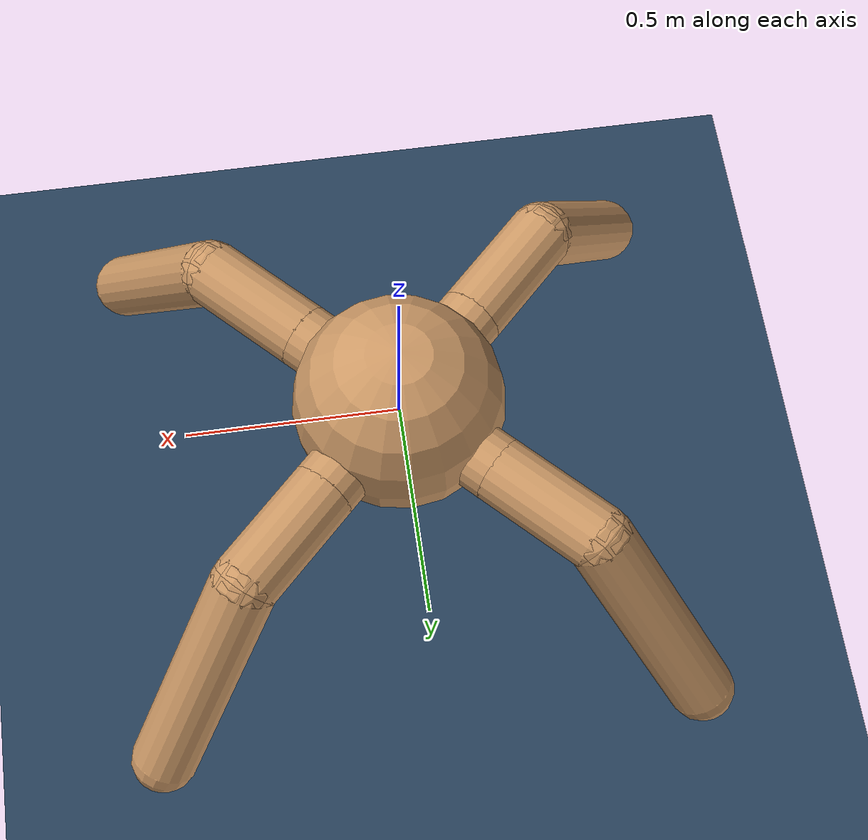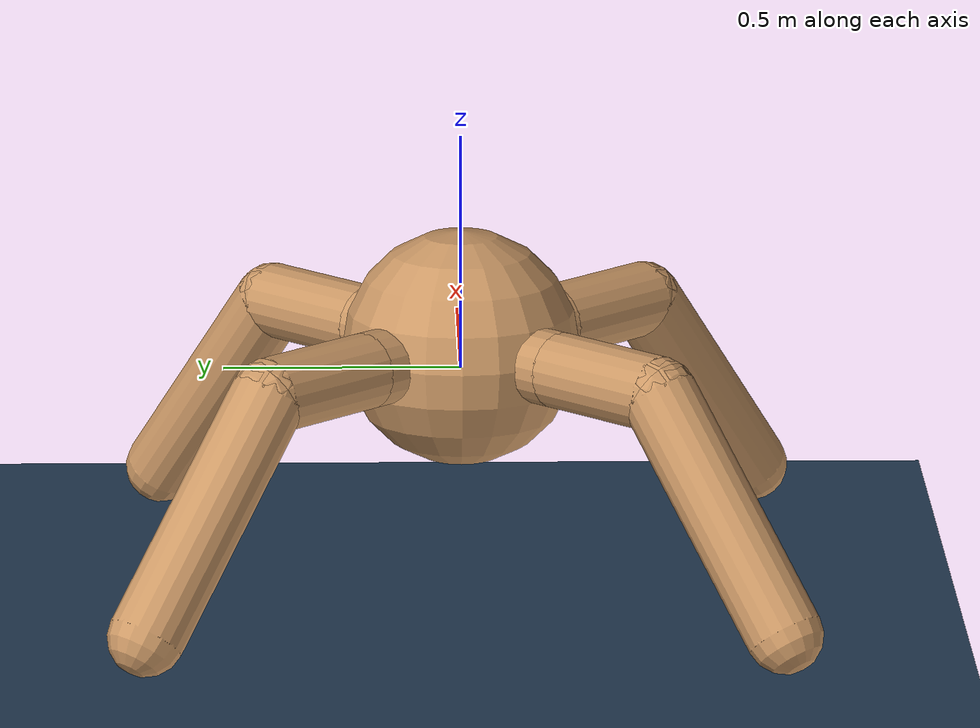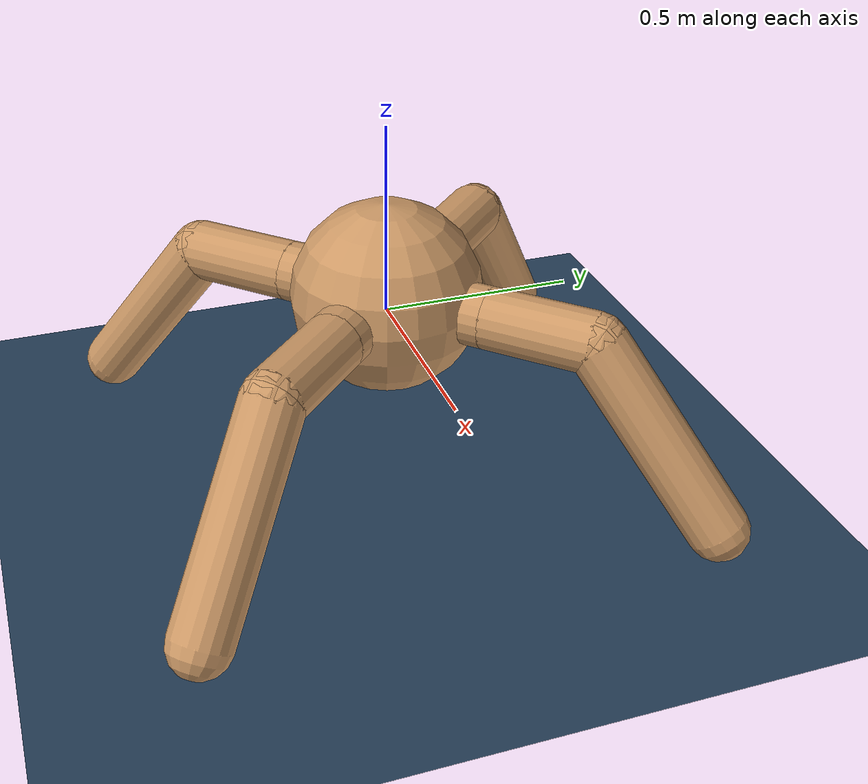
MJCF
<mujoco model="ant">
  <compiler angle="radian"/>
  <option impratio="10" iterations="100" ls_iterations="4" timestep="0.0075" >
      <flag eulerdamp="disable"/>
  </option>
  <!--  reduce contact computation for mjx -->
  <custom>
      <numeric data="15" name="max_contact_points"/>
      <numeric data="15" name="max_geom_pairs"/>
    </custom>

   <visual>
        <quality shadowsize="2048" />
        <headlight ambient="0.4 0.4 0.4" diffuse="0.8 0.8 0.8" specular="0.1 0.1 0.1" />
    </visual>
  <default>
    <motor ctrlrange="-1.0 1.0" ctrllimited="true" gear="5."/>
    <geom friction="1 0.5 0.5" solref=".02 1" solimp="0 .8 .01" material="self" density="50.0"/>
    <joint limited="true" armature="1" damping="1" stiffness="1" solreflimit=".04 1" solimplimit="0 .8 .03"/>
    <default class="rangefinder">
        <site type="capsule" size=".05 .5" rgba="1 0 0 .4" group="4"/>
    </default>
  </default>
  <asset>
    <texture type="2d" name="grid" builtin="checker" mark="edge" rgb1="0.1 0.2 0.3" rgb2="0.2 0.3 0.4" markrgb="0.2 0.3 0.4" width="300" height="300" />
    <material name="grid" texture="grid" texuniform="true" reflectance="0.2" />
    <material name="self" rgba=".8 .6 .4 1"/>
  </asset>
  <worldbody>
    <camera name="sideon" pos="0 -10 5" fovy="45" mode="targetbody" target="torso" />
    <camera name="float_far"  pos="-4 0 2" xyaxes="0 -1 0 .5 0 1" mode="trackcom" fovy="90"/>
    <geom name="ground" size="20 20 0.1" pos="-0.0 0 -0.5" type="plane" material="grid"/>
    <body name="torso" pos="0 0 0.0472">
      <joint armature="0" damping="0" limited="false" margin="0.01" name="root" pos="0 0 0" type="free"/>
      <camera name="floating"  pos="-2 0 1" xyaxes="0 -1 0 .5 0 1" mode="trackcom" fovy="90"/>
      <camera name="egocentric"  pos=".25 0 .11" xyaxes="0 -1 0 0 0 1" fovy="90" />

      <site name="torso_touch" type="box" size="0.26 0.26 0.26" rgba="0 0 1 1" group="4"/>
      <geom name="torso_geom" type="sphere" size="0.25" density="100.0"/>
      <site name="torso_site" size="0.05" rgba="1 0 0 1"/>

      <site name="rf_xp" class="rangefinder" pos="0.25 0 0.11" zaxis="1 0 0"/>
      <site name="rf_xn" class="rangefinder" pos="-0.25 0 0.11" zaxis="-1 0 0"/>
      <site name="rf_yp" class="rangefinder" pos="0 0.25 0.11"  zaxis="0 1 0"/>
      <site name="rf_yn" class="rangefinder" pos="0 -0.25 0.11"  zaxis="0 -1 0"/>
      <site name="rf_xpyp" class="rangefinder" pos="0.25 0.25 0.11" zaxis="1 1 0"/>
      <site name="rf_xpyn" class="rangefinder" pos="0.25 -0.25 0.11"  zaxis="1 -1 0"/>
      <site name="rf_xnyn" class="rangefinder" pos="-0.25 -0.25 0.11" zaxis="-1 -1 0"/>
      <site name="rf_xnyp" class="rangefinder" pos="-0.25 0.25 0.11" zaxis="-1 1 0"/>

      <!-- sites that visualize the x-y axis of the ant body, good for debugging -->
      <site name="x_pos" type="capsule" pos="0.5 0 0" size=".05 .5" zaxis="1 0 0" rgba="1 0 0 1" group="5"/>
      <site name="x_neg" type="capsule" pos="-0.5 0 0" size=".05 .5"  zaxis="-1 0 0" rgba="0 0 1 1"  group="5"/>
      <site name="y_pos" type="capsule" pos="0 0.5 0" size=".05 .5"  zaxis="0 1 0" rgba="1 1 1 1" group="5"/>
      <site name="y_neg" type="capsule" pos="0 -0.5 0" size=".05 .5"  zaxis="0 -1 0" rgba="0 0 0 1" group="5"/>
      <site name="port_site" pos=".5 0 0" size="0.5" rgba="1 0 0 1" group="5"/>
      <site name="starboard_site" pos="-.5 0 0" size="0.5" rgba="0 1 0 1" group="5"/>

      <site name="rc1" type="sphere" size=".1" rgba="1 1 1 1"/>
      <site name="rc2" type="sphere" size=".1" rgba="1 1 1 1"/>
      <site name="rc3" type="sphere" size=".1" rgba="1 1 1 1"/>
      <site name="rc4" type="sphere" size=".1" rgba="1 1 1 1"/>
      <site name="rc5" type="sphere" size=".1" rgba="1 1 1 1"/>
      <site name="rc6" type="sphere" size=".1" rgba="1 1 1 1"/>
      <site name="rc7" type="sphere" size=".1" rgba="1 1 1 1"/>
      <site name="rc8" type="sphere" size=".1" rgba="1 1 1 1"/>
      <site name="rc9" type="sphere" size=".1" rgba="1 1 1 1"/>
      <site name="rc10" type="sphere" size=".1" rgba="1 1 1 1"/>

      <body name="front_left_leg">
        <geom name="front_left_aux_geom" type="capsule" size="0.08" fromto="0.0 0.0 0.0 0.2 0.2 0.0"/>
        <body name="front_left_aux" pos="0.2 0.2 0">
          <joint name="front_left_hip" range="-0.52359 0.52359"/>
          <geom name="front_left_leg_geom" type="capsule" size="0.08" fromto="0.0 0.0 0.0 0.2 0.2 0.0"/>
          <site name="front_left_leg_touch" type="box" pos="0.1 0.1 0" size="0.09 0.09 0.24" zaxis="0.2 0.2 0" rgba="1 1 0 0"/>
          <body name="front_left_foot" pos="0.2 0.2 0" quat="0.98480775301220802 -0.33428158105097677 0.33428158105097677 0">
            <joint name="front_left_ankle" type="hinge" pos="0.0 0.0 0.0" axis="1 -1 0" range="-0.34906 0.34906"/>
            <geom name="front_left_ankle_geom" type="capsule" size="0.08" fromto="0.0 0.0 0.0 0.4 0.4 0.0"/>
            <site name="front_left_ankle_touch" type="box" pos="0.2 0.2 0" size="0.1 0.1 0.45" zaxis="0.2 0.2 0.0" rgba="1 1 0 0" />
          </body>
        </body>
      </body>

      <body name="front_right_leg">
        <geom name="front_right_aux_geom" type="capsule" size="0.08" fromto="0.0 0.0 0.0 0.2 -0.2 0.0"/>
        <body name="front_right_aux" pos="0.2 -0.2 0">
          <joint name="front_right_hip" range="-0.52359 0.52359"/>
          <geom name="front_right_leg_geom" type="capsule" size="0.08" fromto="0.0 0.0 0.0 0.2 -0.2 0.0"/>
          <site name="front_right_leg_touch" type="box" pos="0.1 -0.1 0" size="0.09 0.09 0.24" zaxis="0.2 -0.2 0.0" rgba="0 0 1 0"/>
          <body name="front_right_foot" pos="0.2 -0.2 0" quat="0.98480775301220802 0.33428158105097677 0.33428158105097677 0">
            <joint name="front_right_ankle" type="hinge" pos="0.0 0.0 0.0" axis="-1 -1 0" range="-0.34906 0.34906"/>
            <geom name="front_right_ankle_geom" type="capsule" size="0.08" fromto="0.0 0.0 0.0 0.4 -0.4 0.0"/>
            <site name="front_right_ankle_touch" type="box" pos="0.2 -0.2 0" size="0.09 0.09 0.39" zaxis="0.2 -0.2 0.0" rgba="0 0 1 0"/>
          </body>
        </body>
      </body>

      <body name="back_right_leg">
        <geom name="back_right_aux_geom" type="capsule" size="0.08" fromto="0.0 0.0 0.0 -0.2 -0.2 0.0"/>
        <body name="back_right_aux" pos="-0.2 -0.2 0">
          <joint name="back_right_hip" range="-0.52359 0.52359"/>
          <geom name="back_right_leg_geom" type="capsule" size="0.08" fromto="0.0 0.0 0.0 -0.2 -0.2 0.0"/>
          <site name="back_right_leg_touch" type="box" pos="-0.1 -0.1 0" size="0.09 0.09 0.24" zaxis="-0.2 -0.2 0.0" rgba="0 0 1 0"/>
          <body name="back_right_foot" pos="-0.2 -0.2 0" quat="0.98480775301220802 0.33428158105097677 -0.33428158105097677 0">
            <joint name="back_right_ankle" type="hinge" pos="0.0 0.0 0.0" axis="-1 1 0" range="-0.34906 0.34906"/>
            <geom name="back_right_ankle_geom" type="capsule" size="0.08" fromto="0.0 0.0 0.0 -0.4 -0.4 0.0"/>
            <site name="back_right_ankle_touch" type="box" pos="-0.2 -0.2 0" size="0.09 0.09 0.39" zaxis="-0.2 -0.2 0.0" rgba="0 0 1 0"/>
          </body>
        </body>
      </body>

      <body name="back_left_leg">
        <geom name="back_left_aux_geom" type="capsule" size="0.08" fromto="0.0 0.0 0.0 -0.2 0.2 0.0"/>
        <body name="back_left_aux" pos="-0.2 0.2 0">
          <joint name="back_left_hip" range="-0.52359 0.52359"/>
          <geom name="back_left_leg_geom" type="capsule" size="0.08" fromto="0.0 0.0 0.0 -0.2 0.2 0.0"/>
          <site name="back_left_leg_touch" type="box" pos="-0.1 0.1 0" size="0.09 0.09 0.24" zaxis="-0.2 0.2 0.0" rgba="0 0 1 0"/>
          <body name="back_left_foot" pos="-0.2 0.2 0" quat="0.98480775301220802 -0.33428158105097677 -0.33428158105097677 0">
            <joint name="back_left_ankle" type="hinge" pos="0.0 0.0 0.0" axis="1 1 0" range="-0.34906 0.34906" />
            <geom name="back_left_ankle_geom" type="capsule" size="0.08" fromto="0.0 0.0 0.0 -0.4 0.4 0.0"/>
            <site name="back_left_ankle_touch" type="box" pos="-0.2 0.2 0" size="0.09 0.09 0.39" zaxis="-0.2 0.2 0.0" rgba="0 0 1 0"/>
          </body>
        </body>
      </body>

    </body>
  </worldbody>

  <actuator>
    <motor name="front_left_hip"   joint="front_left_hip"/>
    <motor name="front_left_ankle" joint="front_left_ankle"/>
    <motor name="front_right_hip"   joint="front_right_hip"/>
    <motor name="front_right_ankle" joint="front_right_ankle"/>
    <motor name="back_right_hip"   joint="back_right_hip"/>
    <motor name="back_right_ankle" joint="back_right_ankle"/>
    <motor name="back_left_hip"   joint="back_left_hip"/>
    <motor name="back_left_ankle" joint="back_left_ankle"/>
  </actuator>

  <contact>
    <exclude body1="torso" body2="front_left_aux"/>
    <exclude body1="torso" body2="front_right_aux"/>
    <exclude body1="torso" body2="back_right_aux"/>
    <exclude body1="torso" body2="back_left_aux"/>
  </contact>
</mujoco>
